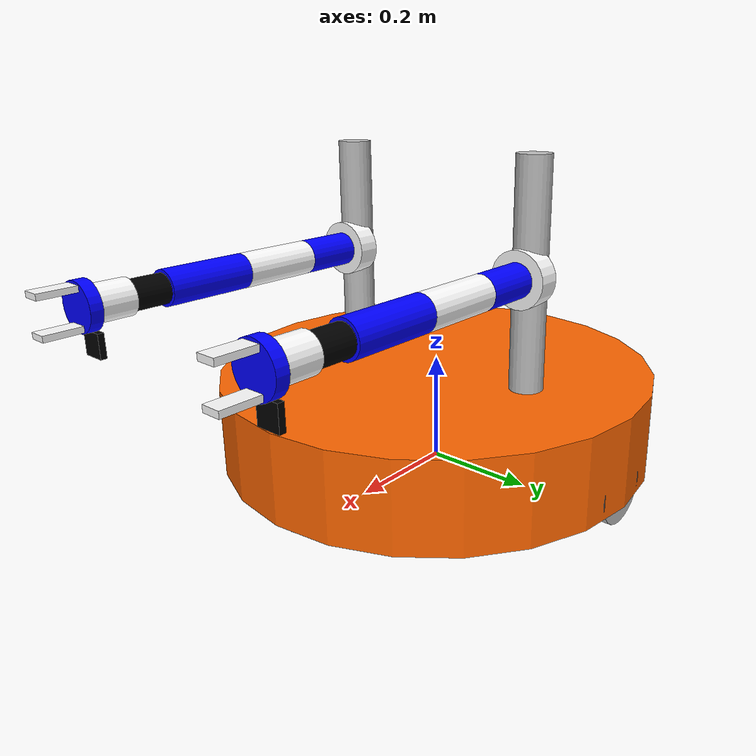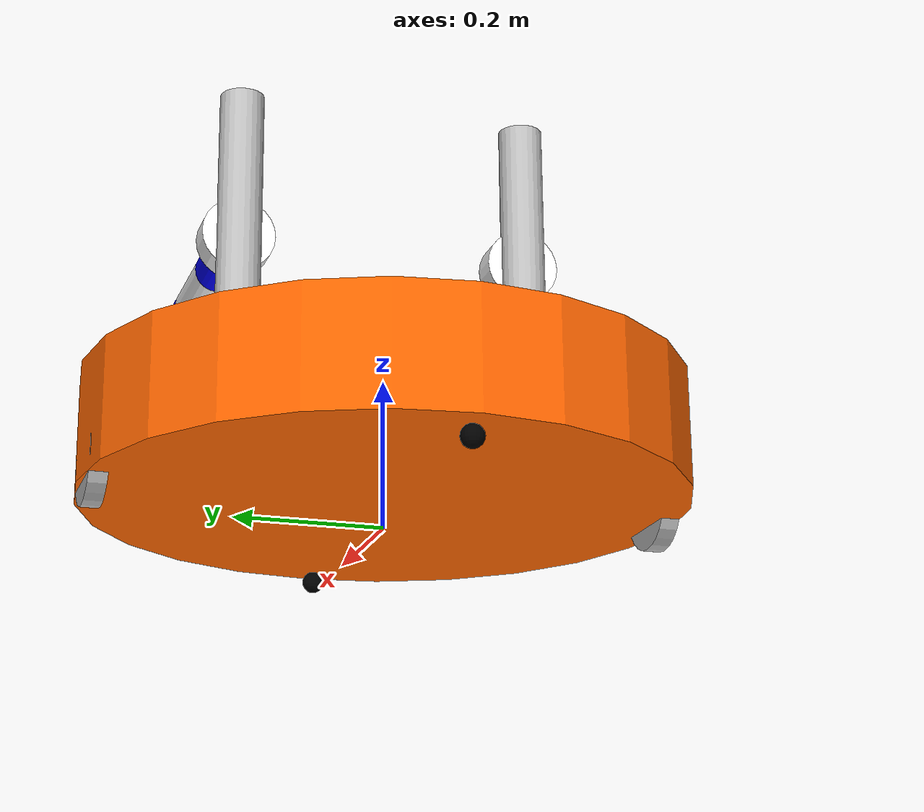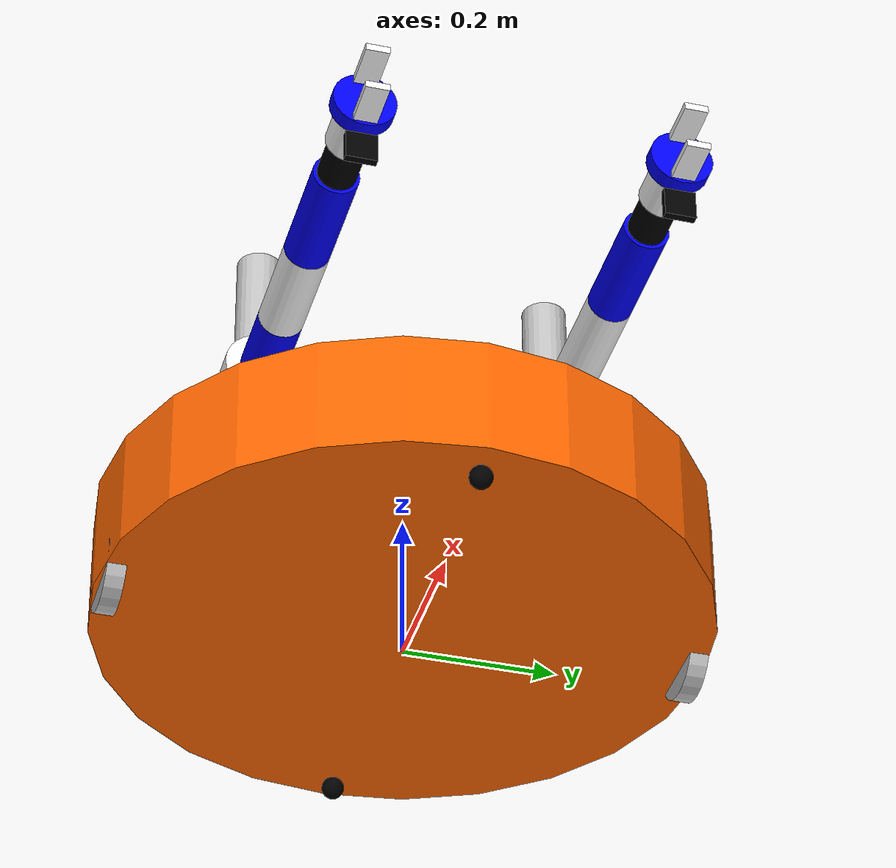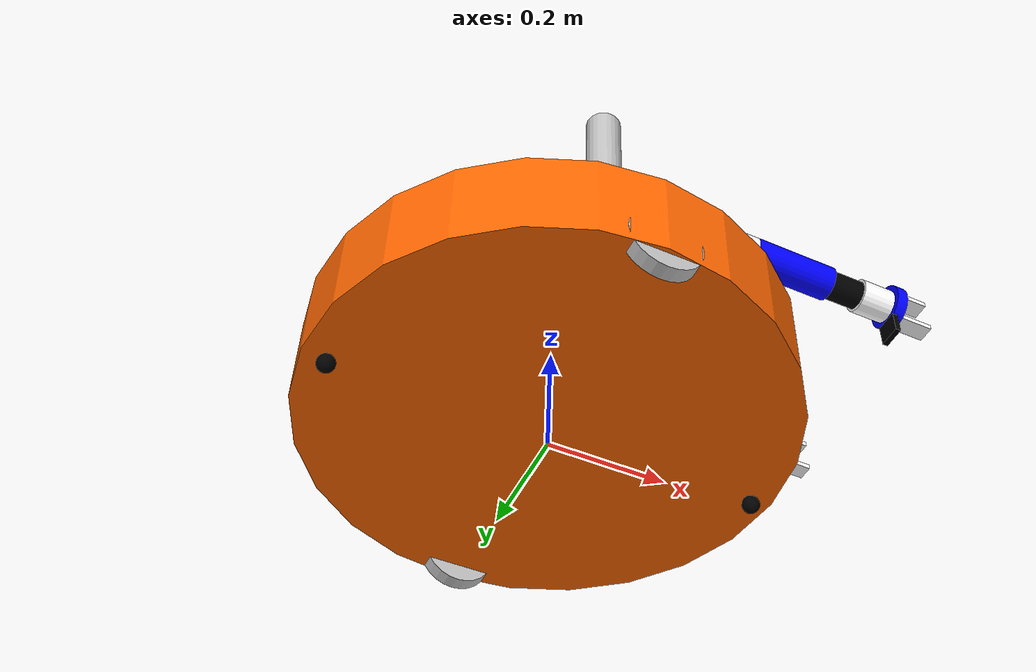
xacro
<?xml version="1.0"?>
<robot name="marm" xmlns:xacro="http://www.ros.org/wiki/xacro">
    <xacro:property name="stand_mass"   value="2" />
    <xacro:property name="stand_radius" value="0.03"/>
    <xacro:property name="stand_length" value="0.4"/>
    <xacro:include filename="$(find marm_description)/urdf/mbot_base_gazebo.xacro" />
    <xacro:include filename="$(find marm_description)/urdf/arm_base_gazebo.xacro" />
    <xacro:include filename="$(find marm_description)/urdf/marm.gazebo.urdf.xacro" />
    <xacro:include filename="$(find marm_description)/urdf/sensors/camera_gazebo.xacro" />
    <!--xacro:include filename="$(find marm_description)/urdf/kinect_gazebo.xacro" /-->

    <xacro:property name="camera_offset_x" value="0" />
    <xacro:property name="camera_offset_y" value="${link6_radius+length_y/2}" />
    <xacro:property name="camera_offset_z" value="0" />

    <mbot_base_gazebo/>
<!-- left_arm -->
    <joint name="base_stand_joint1" type="fixed">
        <origin xyz="0 0.2 ${stand_length/2+0.08}" rpy="0 0 ${M_PI/2}" />
        <parent link="base_link"/>
        <child link="stand1" />
    </joint>

    <link name="stand1">
        <visual>
            <origin xyz=" 0 0 0" rpy="0 0 0" />
            <geometry>
                <cylinder length="${stand_length}" radius="${stand_radius}"/>
            </geometry>
            <material name="gray" />
        </visual>
        <collision>
            <origin xyz=" 0 0 0" rpy="0 0 0" />
            <geometry>
                <cylinder length="${stand_length}" radius="${stand_radius}"/>
            </geometry>
        </collision>
        <cylinder_inertial_matrix  m="${stand_mass}" r="${stand_radius}" h="${stand_length}" />
    </link>

    <gazebo reference="stand1">
        <material>Gazebo/Gray</material>
    </gazebo>

    <arm_base prefix="left" parent="stand1" xyz="0 0 0" rpy="${M_PI/2} 0 0"/>

<!-- right_arm -->
    <joint name="base_stand_joint2" type="fixed">
        <origin xyz="0 -0.2 ${stand_length/2+0.08}" rpy="0 0 ${M_PI/2}" />
        <parent link="base_link"/>
        <child link="stand2" />
    </joint>

    <link name="stand2">
        <visual>
            <origin xyz=" 0 0 0" rpy="0 0 0" />
            <geometry>
                <cylinder length="${stand_length}" radius="${stand_radius}"/>
            </geometry>
            <material name="gray" />
        </visual>
        <collision>
            <origin xyz=" 0 0 0" rpy="0 0 0" />
            <geometry>
                <cylinder length="${stand_length}" radius="${stand_radius}"/>
            </geometry>
        </collision>
        <cylinder_inertial_matrix  m="${stand_mass}" r="${stand_radius}" h="${stand_length}" />
    </link>

    <gazebo reference="stand2">
        <material>Gazebo/Gray</material>
    </gazebo>

    <arm_base prefix="right" parent="stand2" xyz="0 0 0" rpy="${M_PI/2} 0 0"/>
    <!-- leftCamera -->
    <joint name="left_camera_joint" type="fixed">
        <origin xyz="${camera_offset_x} ${camera_offset_y} ${camera_offset_z}" rpy="${M_PI/2} 0 0" />
        <parent link="left_link6"/>
        <child link="left_camera_link"/>
    </joint>

    <xacro:usb_camera prefix="left_camera"/>

    <!-- rightCamera -->
    <joint name="right_camera_joint" type="fixed">
        <origin xyz="${camera_offset_x} ${camera_offset_y} ${camera_offset_z}" rpy="${M_PI/2} 0 0" />
        <parent link="right_link6"/>
        <child link="right_camera_link"/>
    </joint>

    <xacro:usb_camera prefix="right_camera"/>
    <!-- Kinect -->
</robot>

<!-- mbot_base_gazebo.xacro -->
<robot name="mbot" xmlns:xacro="http://www.ros.org/wiki/xacro">

    <!-- PROPERTY LIST -->
    <xacro:property name="M_PI" value="3.1415926"/>
    <xacro:property name="base_mass"   value="40" />
    <xacro:property name="base_radius" value="0.40"/>
    <xacro:property name="base_length" value="0.16"/>

    <xacro:property name="wheel_mass"   value="2" />
    <xacro:property name="wheel_radius" value="0.06"/>
    <xacro:property name="wheel_length" value="0.025"/>
    <xacro:property name="wheel_joint_y" value="0.38"/>
    <xacro:property name="wheel_joint_z" value="0.05"/>

    <xacro:property name="caster_mass"    value="0.5" />
    <xacro:property name="caster_radius"  value="0.015"/> <!-- wheel_radius - ( base_length/2 - wheel_joint_z) -->
    <xacro:property name="caster_joint_x" value="0.36"/>

    <!-- Defining the colors used in this robot -->
    <material name="yellow">
        <color rgba="1 0.4 0 1"/>
    </material>
    <material name="black">
        <color rgba="0 0 0 0.95"/>
    </material>
    <material name="gray">
        <color rgba="0.75 0.75 0.75 1"/>
    </material>

    <!-- Macro for inertia matrix -->
    <xacro:macro name="sphere_inertial_matrix" params="m r">
        <inertial>
            <mass value="${m}" />
            <inertia ixx="${2*m*r*r/5}" ixy="0" ixz="0"
                iyy="${2*m*r*r/5}" iyz="0"
                izz="${2*m*r*r/5}" />
        </inertial>
    </xacro:macro>

    <xacro:macro name="cylinder_inertial_matrix" params="m r h">
        <inertial>
            <mass value="${m}" />
            <inertia ixx="${m*(3*r*r+h*h)/12}" ixy = "0" ixz = "0"
                iyy="${m*(3*r*r+h*h)/12}" iyz = "0"
                izz="${m*r*r/2}" />
        </inertial>
    </xacro:macro>

    <!-- Macro for robot wheel -->
    <xacro:macro name="wheel" params="prefix reflect">
        <joint name="${prefix}_wheel_joint" type="continuous">
            <origin xyz="0 ${reflect*wheel_joint_y} ${-wheel_joint_z}" rpy="0 0 0"/>
            <parent link="base_link"/>
            <child link="${prefix}_wheel_link"/>
            <axis xyz="0 1 0"/>
        </joint>

        <link name="${prefix}_wheel_link">
            <visual>
                <origin xyz="0 0 0" rpy="${M_PI/2} 0 0" />
                <geometry>
                    <cylinder radius="${wheel_radius}" length = "${wheel_length}"/>
                </geometry>
                <material name="gray" />
            </visual>
            <collision>
                <origin xyz="0 0 0" rpy="${M_PI/2} 0 0" />
                <geometry>
                    <cylinder radius="${wheel_radius}" length = "${wheel_length}"/>
                </geometry>
            </collision>
            <cylinder_inertial_matrix  m="${wheel_mass}" r="${wheel_radius}" h="${wheel_length}" />
        </link>

        <gazebo reference="${prefix}_wheel_link">
            <material>Gazebo/Gray</material>
        </gazebo>

        <!-- Transmission is important to link the joints and the controller -->
        <transmission name="${prefix}_wheel_joint_trans">
            <type>transmission_interface/SimpleTransmission</type>
            <joint name="${prefix}_wheel_joint" >
                <hardwareInterface>hardware_interface/EffortJointInterface</hardwareInterface>
            </joint>
            <actuator name="${prefix}_wheel_joint_motor">
                <hardwareInterface>hardware_interface/EffortJointInterface</hardwareInterface>
                <mechanicalReduction>1</mechanicalReduction>
            </actuator>
        </transmission>
    </xacro:macro>

    <!-- Macro for robot caster -->
    <xacro:macro name="caster" params="prefix reflect">
        <joint name="${prefix}_caster_joint" type="fixed">
            <origin xyz="${reflect*caster_joint_x} 0 ${-(base_length/2 + caster_radius)}" rpy="0 0 0"/>
            <parent link="base_link"/>
            <child link="${prefix}_caster_link"/>
            <!--axis xyz="0 1 0"/-->
        </joint>

        <link name="${prefix}_caster_link">
            <visual>
                <origin xyz="0 0 0" rpy="0 0 0"/>
                <geometry>
                    <sphere radius="${caster_radius}" />
                </geometry>
                <material name="black" />
            </visual>
            <collision>
                <origin xyz="0 0 0" rpy="0 0 0"/>
                <geometry>
                    <sphere radius="${caster_radius}" />
                </geometry>
            </collision>
            <sphere_inertial_matrix  m="${caster_mass}" r="${caster_radius}" />
        </link>

        <gazebo reference="${prefix}_caster_link">
            <material>Gazebo/Black</material>
        </gazebo>
    </xacro:macro>

    <xacro:macro name="mbot_base_gazebo">
        <link name="base_footprint">
           <inertial>
                <mass value="0.0001" />
                <origin xyz="0 0 0" />
                <inertia ixx="0.0001" ixy="0.0" ixz="0.0"
                    iyy="0.0001" iyz="0.0"
                    izz="0.0001" />
            </inertial>
            <visual>
                <origin xyz="0 0 0" rpy="0 0 0" />
                <geometry>
                    <box size="0.001 0.001 0.001" />
                </geometry>
            </visual>
        </link>
        <gazebo reference="base_footprint">
            <turnGravityOff>false</turnGravityOff>
        </gazebo>

        <joint name="base_footprint_joint" type="fixed">
            <origin xyz="0 0 ${base_length/2 + caster_radius*2}" rpy="0 0 0" />
            <parent link="base_footprint"/>
            <child link="base_link" />
        </joint>

        <link name="base_link">
            <visual>
                <origin xyz=" 0 0 0" rpy="0 0 0" />
                <geometry>
                    <cylinder length="${base_length}" radius="${base_radius}"/>
                </geometry>
                <material name="yellow" />
            </visual>
            <collision>
                <origin xyz=" 0 0 0" rpy="0 0 0" />
                <geometry>
                    <cylinder length="${base_length}" radius="${base_radius}"/>
                </geometry>
            </collision>
            <cylinder_inertial_matrix  m="${base_mass}" r="${base_radius}" h="${base_length}" />
        </link>

        <gazebo reference="base_link">
            <material>Gazebo/Blue</material>
        </gazebo>

        <wheel prefix="left"  reflect="-1"/>
        <wheel prefix="right" reflect="1"/>

        <caster prefix="front" reflect="-1"/>
        <caster prefix="back"  reflect="1"/>

        <!-- controller -->
        <gazebo>
            <plugin name="differential_drive_controller" filename="libgazebo_ros_diff_drive.so">
                <rosDebugLevel>Debug</rosDebugLevel>
                <publishWheelTF>true</publishWheelTF>
                <robotNamespace>/</robotNamespace>
                <publishTf>1</publishTf>
                <publishWheelJointState>true</publishWheelJointState>
                <alwaysOn>true</alwaysOn>
                <updateRate>100.0</updateRate>
                <legacyMode>true</legacyMode>
                <leftJoint>left_wheel_joint</leftJoint>
                <rightJoint>right_wheel_joint</rightJoint>
                <wheelSeparation>${wheel_joint_y*2}</wheelSeparation>
                <wheelDiameter>${2*wheel_radius}</wheelDiameter>
                <broadcastTF>1</broadcastTF>
                <wheelTorque>30</wheelTorque>
                <wheelAcceleration>1.8</wheelAcceleration>
                <commandTopic>cmd_vel</commandTopic>
                <odometryFrame>odom</odometryFrame>
                <odometryTopic>odom</odometryTopic>
                <robotBaseFrame>base_footprint</robotBaseFrame>
            </plugin>
        </gazebo>
    </xacro:macro>

</robot>

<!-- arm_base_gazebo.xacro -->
<robot name="arm" xmlns:xacro="http://www.ros.org/wiki/xacro">

    <!-- Defining the colors used in this robot -->
    <material name="Black">
        <color rgba="0 0 0 1"/>
    </material>
    <material name="White">
        <color rgba="1 1 1 1"/>
    </material>
    <material name="Blue">
        <color rgba="0 0 1 1"/>
    </material>
    <material name="Red">
        <color rgba="1 0 0 1"/>
    </material>

    <!-- Constants -->
    <xacro:property name="M_PI" value="3.14159"/>

    <!-- link1 properties -->
    <xacro:property name="link0_radius" value="0.05" />
    <xacro:property name="link0_length" value="0.04" />
    <xacro:property name="link0_mass" value="1" />

    <!-- link1 properties -->
    <xacro:property name="link1_radius" value="0.03" />
    <xacro:property name="link1_length" value="0.10" />
    <xacro:property name="link1_mass" value="1" />

    <!-- link2 properties -->
    <xacro:property name="link2_radius" value="0.03" />
    <xacro:property name="link2_length" value="0.14" />
    <xacro:property name="link2_mass" value="0.8" />

    <!-- link3 properties -->
    <xacro:property name="link3_radius" value="0.03" />
    <xacro:property name="link3_length" value="0.15" />
    <xacro:property name="link3_mass" value="0.8" />

    <!-- ink4 properties -->
    <xacro:property name="link4_radius" value="0.025" />
    <xacro:property name="link4_length" value="0.06" />
    <xacro:property name="link4_mass" value="0.7" />

    <!-- link5 properties -->
    <xacro:property name="link5_radius" value="0.03" />
    <xacro:property name="link5_length" value="0.06" />
    <xacro:property name="link5_mass" value="0.7" />

    <!-- link6 properties -->
    <xacro:property name="link6_radius" value="0.04" />
    <xacro:property name="link6_length" value="0.02" />
    <xacro:property name="link6_mass" value="0.6" />

    <!-- gripper -->
    <xacro:property name="gripper_length" value="0.03" />
    <xacro:property name="gripper_width" value="0.01" />
    <xacro:property name="gripper_height" value="0.06" />
    <xacro:property name="gripper_mass" value="0.5" />

    <!-- Gripper frame -->
    <xacro:property name="grasp_frame_radius" value="0.001" />

    <!-- Macro for inertia matrix -->
    <xacro:macro name="cylinder_inertial_matrix" params="m r h">
        <inertial>
            <mass value="${m}" />
            <inertia ixx="${m*(3*r*r+h*h)/12}" ixy = "0" ixz = "0"
                iyy="${m*(3*r*r+h*h)/12}" iyz = "0"
                izz="${m*r*r/2}" />
        </inertial>
    </xacro:macro>

    <xacro:macro name="box_inertial_matrix" params="m w h d">
        <inertial>
            <mass value="${m}" />
            <inertia ixx="${m*(h*h+d*d)/12}" ixy = "0" ixz = "0"
                iyy="${m*(w*w+d*d)/12}" iyz = "0"
                izz="${m*(w*w+h*h)/12}" />
        </inertial>
    </xacro:macro>

    <!-- /////////////////////////////////////   ARM BASE    ////////////////////////////////////////////// -->
    <xacro:macro name="arm_base" params="prefix parent xyz rpy">
        <joint name="${prefix}_${parent}_arm_joint" type="fixed">
            <origin xyz="${xyz}" rpy="${rpy}" />
            <parent link="${parent}"/>
            <child link="${prefix}_base_arm" />
        </joint>

        <link name="${prefix}_base_arm">
            <visual>
                <origin xyz="0 0 0" rpy="0 0 0" />
                <geometry>
                    <box size="0.001 0.001 0.001" />
                </geometry>
            </visual>
        </link>

        <joint name="${prefix}_base_joint" type="fixed">
            <origin xyz="0 0 ${link0_length/2}" rpy="0 0 0" />
            <parent link="${prefix}_base_arm"/>
            <child link="${prefix}_link0" />
        </joint>

        <!-- /////////////////////////////////////  link0    ////////////////////////////////////////////// -->
        <link name="${prefix}_link0">
            <visual>
                <origin xyz="0 0 0" rpy="0 0 0" />
                <geometry>
                    <cylinder radius="${link0_radius}" length="${link0_length}"/>
                </geometry>
                <material name="White" />
            </visual>
            <collision>
                <origin xyz="0 0 0" rpy="0 0 0" />
                <geometry>
                    <cylinder radius="${link0_radius}" length="${link0_length}"/>
                </geometry>
            </collision>
            <cylinder_inertial_matrix m="${link0_mass}" r="${link0_radius}" h="${link0_length}"/>
        </link>

        <joint name="${prefix}_joint1" type="revolute">
            <parent link="${prefix}_link0"/>
            <child link="${prefix}_link1"/>
            <origin xyz="0 0 ${link0_length/2}" rpy="0 ${M_PI/2} 0" />
            <axis xyz="-1 0 0" />
            <limit effort="300" velocity="1" lower="${-M_PI}" upper="${M_PI}"/>
        </joint>

        <!-- /////////////////////////////////////   link1  ////////////////////////////////////////////// -->
        <link name="${prefix}_link1" >
            <visual>
                <origin xyz="-${link1_length/2} 0 0" rpy="0 ${M_PI/2} 0" />
                <geometry>
                    <cylinder radius="${link1_radius}" length="${link1_length}"/>
                </geometry>
                <material name="Blue" />
            </visual>
            <collision>
                <origin xyz="-${link1_length/2} 0 0" rpy="0 ${M_PI/2} 0" />
                <geometry>
                    <cylinder radius="${link1_radius}" length="${link1_length}"/>
                </geometry>
            </collision>
            <cylinder_inertial_matrix m="${link1_mass}" r="${link1_radius}" h="${link1_length}"/>
        </link>

        <joint name="${prefix}_joint2" type="revolute">
            <parent link="${prefix}_link1"/>
            <child link="${prefix}_link2"/>
            <origin xyz="-${link1_length} 0 0.0" rpy="-${M_PI/2} 0 ${M_PI/2}" />
            <axis xyz="1 0 0" />
            <limit effort="300" velocity="1" lower="${-M_PI}" upper="${M_PI}" />
        </joint>

        <!-- ///////////////////////////////////////   link2  ////////////////////////////////////////////// -->
        <link name="${prefix}_link2" >
            <visual>
                <origin xyz="0 0 ${link2_length/2}" rpy="0 0 0" />
                <geometry>
                    <cylinder radius="${link2_radius}" length="${link2_length}"/>
                </geometry>
                <material name="White" />
            </visual>

            <collision>
                <origin xyz="0 0 ${link2_length/2}" rpy="0 0 0" />
                <geometry>
                    <cylinder radius="${link2_radius}" length="${link2_length}"/>
                </geometry>
            </collision>
            <cylinder_inertial_matrix m="${link2_mass}" r="${link2_radius}" h="${link2_length}"/>
        </link>

        <joint name="${prefix}_joint3" type="revolute">
            <parent link="${prefix}_link2"/>
            <child link="${prefix}_link3"/>
            <origin xyz="0 0 ${link2_length}" rpy="0 ${M_PI} 0" />
            <axis xyz="-1 0 0" />
            <limit effort="300" velocity="1" lower="${-M_PI}" upper="${M_PI}" />
        </joint>

        <!-- /////////////////////////////////   link3  ///////////////////////////////////////////////////// -->
        <link name="${prefix}_link3" >
            <visual>
                <origin xyz="0 0 -${link3_length/2}" rpy="0 0 0" />
                <geometry>
                    <cylinder radius="${link3_radius}" length="${link3_length}"/>
                </geometry>
                <material name="Blue" />
            </visual>
            <collision>
                <origin xyz="0 0 -${link3_length/2}" rpy="0 0 0" />
                <geometry>
                    <cylinder radius="${link3_radius}" length="${link3_length}"/>
                </geometry>
            </collision>
            <cylinder_inertial_matrix m="${link3_mass}" r="${link3_radius}" h="${link3_length}"/>
        </link>

        <joint name="${prefix}_joint4" type="revolute">
            <parent link="${prefix}_link3"/>
            <child link="${prefix}_link4"/>
            <origin xyz="0.0 0.0 -${link3_length}" rpy="0 ${M_PI/2} ${M_PI}" />
            <axis xyz="1 0 0" />
            <limit effort="300" velocity="1" lower="${-M_PI}" upper="${M_PI}" />
        </joint>

        <!-- ///////////////////////////////////   link4  //////////////////////////////////////////////// -->
        <link name="${prefix}_link4" >
            <visual>
                <origin xyz="${link4_length/2} 0 0" rpy="0 ${M_PI/2} 0" />
                <geometry>
                    <cylinder radius="${link4_radius}" length="${link4_length}"/>
                </geometry>
                <material name="Black" />
            </visual>
            <collision>
                <origin xyz="${link4_length/2} 0 0" rpy="0 ${M_PI/2} 0" />
                <geometry>
                    <cylinder radius="${link4_radius}" length="${link4_length}"/>
                </geometry>
            </collision>
            <cylinder_inertial_matrix m="${link4_mass}" r="${link4_radius}" h="${link4_length}"/>
        </link>

        <joint name="${prefix}_joint5" type="revolute">
            <parent link="${prefix}_link4"/>
            <child link="${prefix}_link5"/>
            <origin xyz="${link4_length} 0.0 0.0" rpy="0 ${M_PI/2} 0" />
            <axis xyz="1 0 0" />
            <limit effort="300" velocity="1" lower="${-M_PI}" upper="${M_PI}" />
        </joint>

        <!-- //////////////////////////////////   link5  ///////////////////////////////////////////////// -->
        <link name="${prefix}_link5">
            <visual>
                <origin xyz="0 0 ${link4_length/2}" rpy="0 0 0" />
                <geometry>
                    <cylinder radius="${link5_radius}" length="${link5_length}"/>
                </geometry>
                <material name="White" />
            </visual>
            <collision>
                <origin xyz="0 0 ${link4_length/2} " rpy="0 0 0" />
                <geometry>
                    <cylinder radius="${link5_radius}" length="${link5_length}"/>
                </geometry>
            </collision>
            <cylinder_inertial_matrix m="${link5_mass}" r="${link5_radius}" h="${link5_length}"/>
        </link>

        <joint name="${prefix}_joint6" type="revolute">
            <parent link="${prefix}_link5"/>
            <child link="${prefix}_link6"/>
            <origin xyz="0 0 ${link4_length}" rpy="${1.5*M_PI} -${M_PI/2} 0" />
            <axis xyz="1 0 0" />
            <limit effort="300" velocity="1" lower="${-2*M_PI}" upper="${2*M_PI}" />
        </joint>

        <!-- ////////////////////////////////   link6  ///////////////////////////////////////////////// -->
        <link name="${prefix}_link6">
            <visual>
                <origin xyz="${link6_length/2} 0 0 " rpy="0 ${M_PI/2} 0" />
                <geometry>
                    <cylinder radius="${link6_radius}" length="${link6_length}"/>
                </geometry>
                <material name="Blue" />
            </visual>
            <collision>
                <origin xyz="${link6_length/2} 0 0" rpy="0 ${M_PI/2} 0" />
                <geometry>
                    <cylinder radius="${link6_radius}" length="${link6_length}"/>
                </geometry>
            </collision>
            <cylinder_inertial_matrix m="${link6_mass}" r="${link6_radius}" h="${link6_length}"/>
        </link>

        <!--joint name="${prefix}_finger_joint1" type="prismatic"-->
        <joint name="${prefix}_finger_joint1" type="fixed">
            <parent link="${prefix}_link6"/>
            <child link="${prefix}_gripper_finger_link1"/>
            <origin xyz="${link6_length} -0.03 0" rpy="0 0 0" />
        </joint>

        <!-- //////////////////////////////////////   gripper   ////////////////////////////////////////////// -->
        <!-- LEFT GRIPPER AFT LINK -->
        <link name="${prefix}_gripper_finger_link1">
            <visual>
                <origin xyz="${gripper_height/2} 0 0" rpy="0 ${M_PI/2} 0" />
                <geometry>
                    <box size="${gripper_length} ${gripper_width} ${gripper_height}" />
                </geometry>
                <material name="White" />
            </visual>
            <collision>
                <origin xyz="${gripper_height/2} 0 0" rpy="0 ${M_PI/2} 0" />
                <geometry>
                    <box size="${gripper_length} ${gripper_width} ${gripper_height}" />
                </geometry>
            </collision>
            <box_inertial_matrix m="${gripper_mass}" w="${gripper_width}" h="${gripper_height}" d="${gripper_length}"/>
        </link>

        <joint name="${prefix}_finger_joint2" type="fixed">
            <parent link="${prefix}_link6"/>
            <child link="${prefix}_gripper_finger_link2"/>
            <origin xyz="${link6_length} 0.03 0" rpy="0 0 0" />
        </joint>

        <!-- RIGHT GRIPPER AFT LINK -->
        <link name="${prefix}_gripper_finger_link2">
            <visual>
                <origin xyz="${gripper_height/2} 0 0" rpy="0 ${M_PI/2} 0" />
                <geometry>
                    <box size="${gripper_length} ${gripper_width} ${gripper_height}" />
                </geometry>
                <material name="White" />
            </visual>
            <collision>
                <origin xyz="${gripper_height/2} 0 0" rpy="0 ${M_PI/2} 0" />
                <geometry>
                    <box size="${gripper_length} ${gripper_width} ${gripper_height}" />
                </geometry>
            </collision>
            <box_inertial_matrix m="${gripper_mass}" w="${gripper_width}" h="${gripper_height}" d="${gripper_length}"/>
        </link>

        <!-- Grasping frame -->
        <link name="${prefix}_grasping_frame"/>

        <joint name="${prefix}_grasping_frame_joint" type="fixed">
            <parent link="${prefix}_link6"/>
            <child link="${prefix}_grasping_frame"/>
            <origin xyz="${gripper_height} 0 0" rpy="0 0 0"/>
        </joint>

        <!-- /////////////////////////////////   Gazebo   ////////////////////////////////////// -->
        <gazebo reference="${prefix}_base_arm">
            <material>Gazebo/White</material>
        </gazebo>
        <gazebo reference="${prefix}_link1">
            <material>Gazebo/Blue</material>
        </gazebo>
        <gazebo reference="${prefix}_link2">
            <material>Gazebo/White</material>
        </gazebo>
        <gazebo reference="${prefix}_link3">
            <material>Gazebo/Blue</material>
        </gazebo>
        <gazebo reference="${prefix}_link4">
            <material>Gazebo/Black</material>
        </gazebo>
        <gazebo reference="${prefix}_link5">
            <material>Gazebo/White</material>
        </gazebo>
        <gazebo reference="${prefix}_link6">
            <material>Gazebo/Blue</material>
        </gazebo>

        <!-- Transmissions for ROS Control -->
        <xacro:macro name="transmission_block" params="joint_name">
            <transmission name="${joint_name}_trans">
                <type>transmission_interface/SimpleTransmission</type>
                <joint name="${joint_name}">
                    <hardwareInterface>hardware_interface/EffortJointInterface</hardwareInterface>
                </joint>
                <actuator name="${joint_name}_motor">
                    <hardwareInterface>hardware_interface/EffortJointInterface</hardwareInterface>
                    <mechanicalReduction>1</mechanicalReduction>
                </actuator>
            </transmission>
        </xacro:macro>

        <xacro:transmission_block joint_name="${prefix}_joint1"/>
        <xacro:transmission_block joint_name="${prefix}_joint2"/>
        <xacro:transmission_block joint_name="${prefix}_joint3"/>
        <xacro:transmission_block joint_name="${prefix}_joint4"/>
        <xacro:transmission_block joint_name="${prefix}_joint5"/>
        <xacro:transmission_block joint_name="${prefix}_joint6"/>
        <!--xacro:transmission_block joint_name="${prefix}_finger_joint1"/-->

    </xacro:macro>

</robot>

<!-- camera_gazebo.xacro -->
<robot xmlns:xacro="http://www.ros.org/wiki/xacro" name="camera">
    <xacro:property name="length_x" value="0.01" />
    <xacro:property name="length_y" value="0.04" />
    <xacro:property name="length_z" value="0.04" />
    <xacro:macro name="usb_camera" params="prefix:=camera">
        <!-- Create laser reference frame -->
        <link name="${prefix}_link">
            <inertial>
                <mass value="0.1" />
                <origin xyz="0 0 0" />
                <inertia ixx="0.01" ixy="0.0" ixz="0.0"
                         iyy="0.01" iyz="0.0"
                         izz="0.01" />
            </inertial>

            <visual>
                <origin xyz=" 0 0 0 " rpy="0 0 0" />
                <geometry>
                    <box size="${length_x} ${length_y} ${length_z}" />
                </geometry>
                <material name="black"/>
            </visual>

            <collision>
                <origin xyz="0.0 0.0 0.0" rpy="0 0 0" />
                <geometry>
                    <box size="${length_x} ${length_y} ${length_z}" />
                </geometry>
            </collision>
        </link>
        <gazebo reference="${prefix}_link">
            <material>Gazebo/Black</material>
        </gazebo>

        <gazebo reference="${prefix}_link">
            <sensor type="camera" name="camera_node">
                <update_rate>30.0</update_rate>
                <camera name="head">
                    <horizontal_fov>1.3962634</horizontal_fov>
                    <image>
                        <width>1280</width>
                        <height>720</height>
                        <format>R8G8B8</format>
                    </image>
                    <clip>
                        <near>0.02</near>
                        <far>300</far>
                    </clip>
                    <noise>
                        <type>gaussian</type>
                        <mean>0.0</mean>
                        <stddev>0.007</stddev>
                    </noise>
                </camera>
                <plugin name="gazebo_camera" filename="libgazebo_ros_camera.so">
                    <alwaysOn>true</alwaysOn>
                    <updateRate>0.0</updateRate>
                    <cameraName>/${prefix}_camera</cameraName>
                    <imageTopicName>image_raw</imageTopicName>
                    <cameraInfoTopicName>camera_info</cameraInfoTopicName>
                    <frameName>camera_link</frameName>
                    <hackBaseline>0.07</hackBaseline>
                    <distortionK1>0.0</distortionK1>
                    <distortionK2>0.0</distortionK2>
                    <distortionK3>0.0</distortionK3>
                    <distortionT1>0.0</distortionT1>
                    <distortionT2>0.0</distortionT2>
                </plugin>
            </sensor>
        </gazebo>

    </xacro:macro>
</robot>
